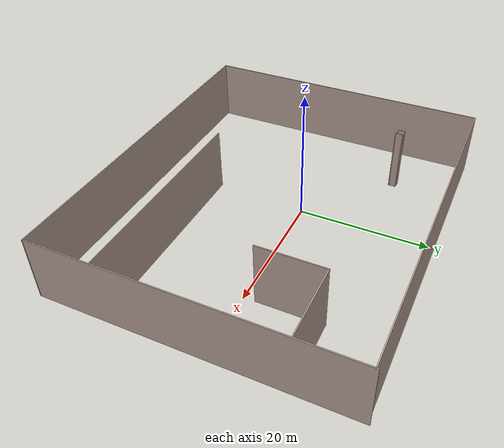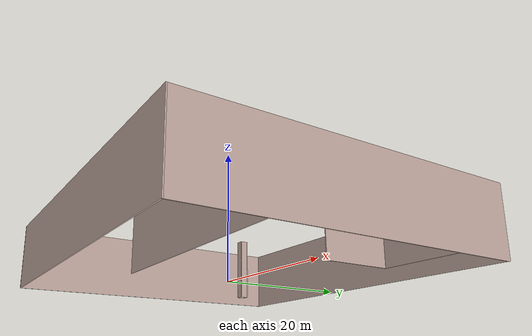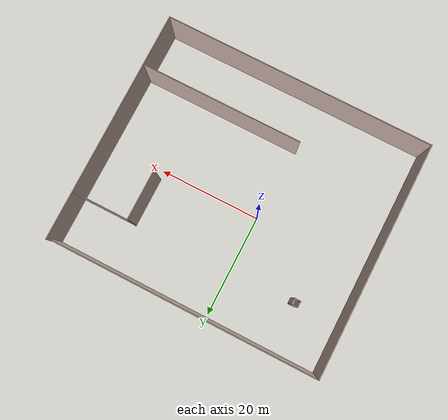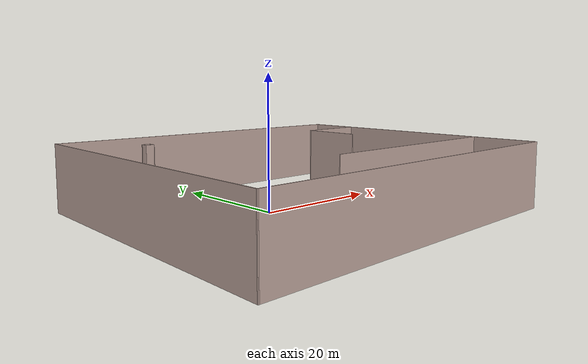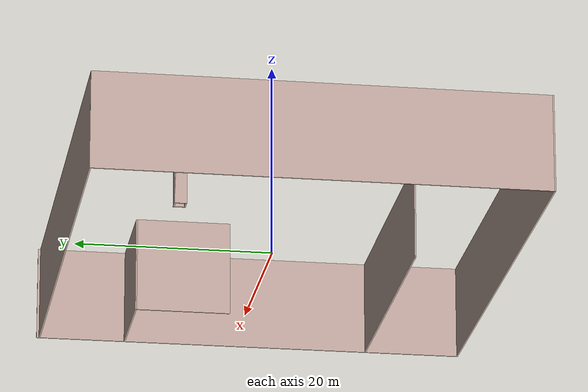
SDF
<?xml version='1.0'?>
<sdf version='1.7'>
  <model name='encloses_small.world'>
    <pose>4.296 -1.856 0 0 -0 0</pose>
    <link name='Wall_1'>
      <collision name='Wall_1_Collision'>
        <geometry>
          <box>
            <size>45.75 0.15 10</size>
          </box>
        </geometry>
        <pose>0 0 5 0 -0 0</pose>
      </collision>
      <visual name='Wall_1_Visual'>
        <pose>0 0 5 0 -0 0</pose>
        <geometry>
          <box>
            <size>45.75 0.15 10</size>
          </box>
        </geometry>
        <material>
          <script>
            <uri>file://media/materials/scripts/gazebo.material</uri>
            <name>Gazebo/Grey</name>
          </script>
          <ambient>0.760784 0.662745 0.627451 1</ambient>
        </material>
        <meta>
          <layer>0</layer>
        </meta>
      </visual>
      <pose>26.3 1e-06 0 0 -0 -1.5708</pose>
    </link>
    <link name='Wall_11'>
      <collision name='Wall_11_Collision'>
        <geometry>
          <box>
            <size>31.5 0.15 10</size>
          </box>
        </geometry>
        <pose>0 0 5 0 -0 0</pose>
      </collision>
      <visual name='Wall_11_Visual'>
        <pose>0 0 5 0 -0 0</pose>
        <geometry>
          <box>
            <size>31.5 0.15 10</size>
          </box>
        </geometry>
        <material>
          <script>
            <uri>file://media/materials/scripts/gazebo.material</uri>
            <name>Gazebo/Grey</name>
          </script>
          <ambient>0.760784 0.662745 0.627451 1</ambient>
        </material>
        <meta>
          <layer>0</layer>
        </meta>
      </visual>
      <pose>10.463 -12.72 0 0 -0 3.14159</pose>
    </link>
    <link name='Wall_2'>
      <collision name='Wall_2_Collision'>
        <geometry>
          <box>
            <size>52.75 0.15 10</size>
          </box>
        </geometry>
        <pose>0 0 5 0 -0 0</pose>
      </collision>
      <visual name='Wall_2_Visual'>
        <pose>0 0 5 0 -0 0</pose>
        <geometry>
          <box>
            <size>52.75 0.15 10</size>
          </box>
        </geometry>
        <material>
          <script>
            <uri>file://media/materials/scripts/gazebo.material</uri>
            <name>Gazebo/Grey</name>
          </script>
          <ambient>0.760784 0.662745 0.627451 1</ambient>
        </material>
        <meta>
          <layer>0</layer>
        </meta>
      </visual>
      <pose>-0 -22.8 0 0 -0 3.14159</pose>
    </link>
    <link name='Wall_28'>
      <collision name='Wall_28_Collision'>
        <geometry>
          <box>
            <size>1.25 0.15 10</size>
          </box>
        </geometry>
        <pose>0 0 5 0 -0 0</pose>
      </collision>
      <visual name='Wall_28_Visual'>
        <pose>0 0 5 0 -0 0</pose>
        <geometry>
          <box>
            <size>1.25 0.15 10</size>
          </box>
        </geometry>
        <material>
          <script>
            <uri>file://media/materials/scripts/gazebo.material</uri>
            <name>Gazebo/Grey</name>
          </script>
          <ambient>0.760784 0.662745 0.627451 1</ambient>
        </material>
        <meta>
          <layer>0</layer>
        </meta>
      </visual>
      <pose>-17.18 13.321 0 0 -0 3.14159</pose>
    </link>
    <link name='Wall_29'>
      <collision name='Wall_29_Collision'>
        <geometry>
          <box>
            <size>1.25 0.15 10</size>
          </box>
        </geometry>
        <pose>0 0 5 0 -0 0</pose>
      </collision>
      <visual name='Wall_29_Visual'>
        <pose>0 0 5 0 -0 0</pose>
        <geometry>
          <box>
            <size>1.25 0.15 10</size>
          </box>
        </geometry>
        <material>
          <script>
            <uri>file://media/materials/scripts/gazebo.material</uri>
            <name>Gazebo/Grey</name>
          </script>
          <ambient>0.760784 0.662745 0.627451 1</ambient>
        </material>
        <meta>
          <layer>0</layer>
        </meta>
      </visual>
      <pose>-17.73 12.771 0 0 -0 -1.5708</pose>
    </link>
    <link name='Wall_3'>
      <collision name='Wall_3_Collision'>
        <geometry>
          <box>
            <size>45.5 0.15 10</size>
          </box>
        </geometry>
        <pose>0 0 5 0 -0 0</pose>
      </collision>
      <visual name='Wall_3_Visual'>
        <pose>0 0 5 0 -0 0</pose>
        <geometry>
          <box>
            <size>45.5 0.15 10</size>
          </box>
        </geometry>
        <material>
          <script>
            <uri>file://media/materials/scripts/gazebo.material</uri>
            <name>Gazebo/Grey</name>
          </script>
          <ambient>0.760784 0.662745 0.627451 1</ambient>
        </material>
        <meta>
          <layer>0</layer>
        </meta>
      </visual>
      <pose>-26.3 -0.124999 0 0 -0 1.5708</pose>
    </link>
    <link name='Wall_30'>
      <collision name='Wall_30_Collision'>
        <geometry>
          <box>
            <size>1.25 0.15 10</size>
          </box>
        </geometry>
        <pose>0 0 5 0 -0 0</pose>
      </collision>
      <visual name='Wall_30_Visual'>
        <pose>0 0 5 0 -0 0</pose>
        <geometry>
          <box>
            <size>1.25 0.15 10</size>
          </box>
        </geometry>
        <material>
          <script>
            <uri>file://media/materials/scripts/gazebo.material</uri>
            <name>Gazebo/Grey</name>
          </script>
          <ambient>0.760784 0.662745 0.627451 1</ambient>
        </material>
        <meta>
          <layer>0</layer>
        </meta>
      </visual>
      <pose>-17.18 12.221 0 0 -0 0</pose>
    </link>
    <link name='Wall_31'>
      <collision name='Wall_31_Collision'>
        <geometry>
          <box>
            <size>1.25 0.15 10</size>
          </box>
        </geometry>
        <pose>0 0 5 0 -0 0</pose>
      </collision>
      <visual name='Wall_31_Visual'>
        <pose>0 0 5 0 -0 0</pose>
        <geometry>
          <box>
            <size>1.25 0.15 10</size>
          </box>
        </geometry>
        <material>
          <script>
            <uri>file://media/materials/scripts/gazebo.material</uri>
            <name>Gazebo/Grey</name>
          </script>
          <ambient>0.760784 0.662745 0.627451 1</ambient>
        </material>
        <meta>
          <layer>0</layer>
        </meta>
      </visual>
      <pose>-16.63 12.771 0 0 -0 1.5708</pose>
    </link>
    <link name='Wall_4'>
      <collision name='Wall_4_Collision'>
        <geometry>
          <box>
            <size>52.75 0.15 10</size>
          </box>
        </geometry>
        <pose>0 0 5 0 -0 0</pose>
      </collision>
      <visual name='Wall_4_Visual'>
        <pose>0 0 5 0 -0 0</pose>
        <geometry>
          <box>
            <size>52.75 0.15 10</size>
          </box>
        </geometry>
        <material>
          <script>
            <uri>file://media/materials/scripts/gazebo.material</uri>
            <name>Gazebo/Grey</name>
          </script>
          <ambient>0.760784 0.662745 0.627451 1</ambient>
        </material>
        <meta>
          <layer>0</layer>
        </meta>
      </visual>
      <pose>-0 22.55 0 0 -0 0</pose>
    </link>
    <link name='Wall_8'>
      <collision name='Wall_8_Collision'>
        <geometry>
          <box>
            <size>11 0.15 10</size>
          </box>
        </geometry>
        <pose>0 0 5 0 -0 0</pose>
      </collision>
      <visual name='Wall_8_Visual'>
        <pose>0 0 5 0 -0 0</pose>
        <geometry>
          <box>
            <size>11 0.15 10</size>
          </box>
        </geometry>
        <material>
          <script>
            <uri>file://media/materials/scripts/gazebo.material</uri>
            <name>Gazebo/Grey</name>
          </script>
          <ambient>0.760784 0.662745 0.627451 1</ambient>
        </material>
        <meta>
          <layer>0</layer>
        </meta>
      </visual>
      <pose>20.794 13.414 0 0 -0 3.14159</pose>
    </link>
    <link name='Wall_9'>
      <collision name='Wall_9_Collision'>
        <geometry>
          <box>
            <size>10 0.15 10</size>
          </box>
        </geometry>
        <pose>0 0 5 0 -0 0</pose>
      </collision>
      <visual name='Wall_9_Visual'>
        <pose>0 0 5 0 -0 0</pose>
        <geometry>
          <box>
            <size>10 0.15 10</size>
          </box>
        </geometry>
        <material>
          <script>
            <uri>file://media/materials/scripts/gazebo.material</uri>
            <name>Gazebo/Grey</name>
          </script>
          <ambient>0.760784 0.662745 0.627451 1</ambient>
        </material>
        <meta>
          <layer>0</layer>
        </meta>
      </visual>
      <pose>15.369 8.489 0 0 -0 -1.5708</pose>
    </link>
    <static>1</static>
  </model>
</sdf>
